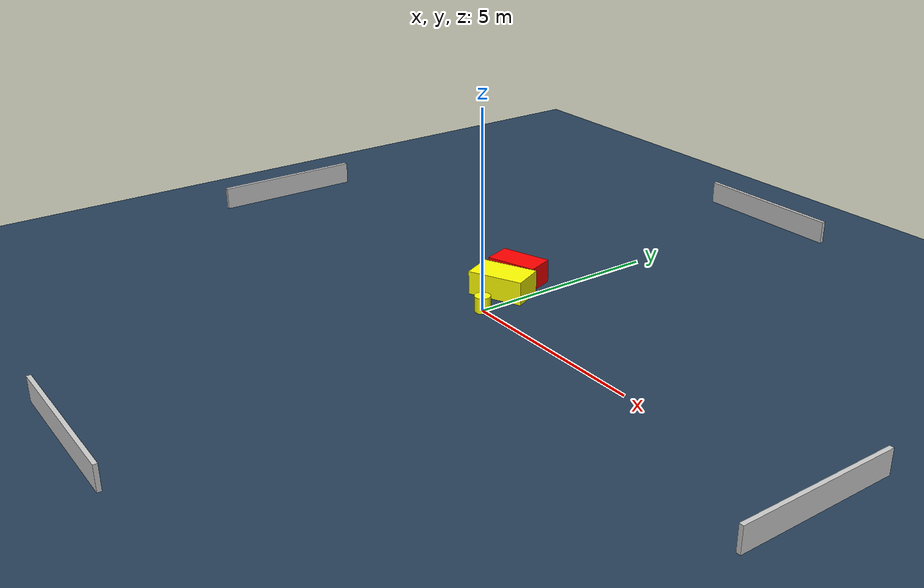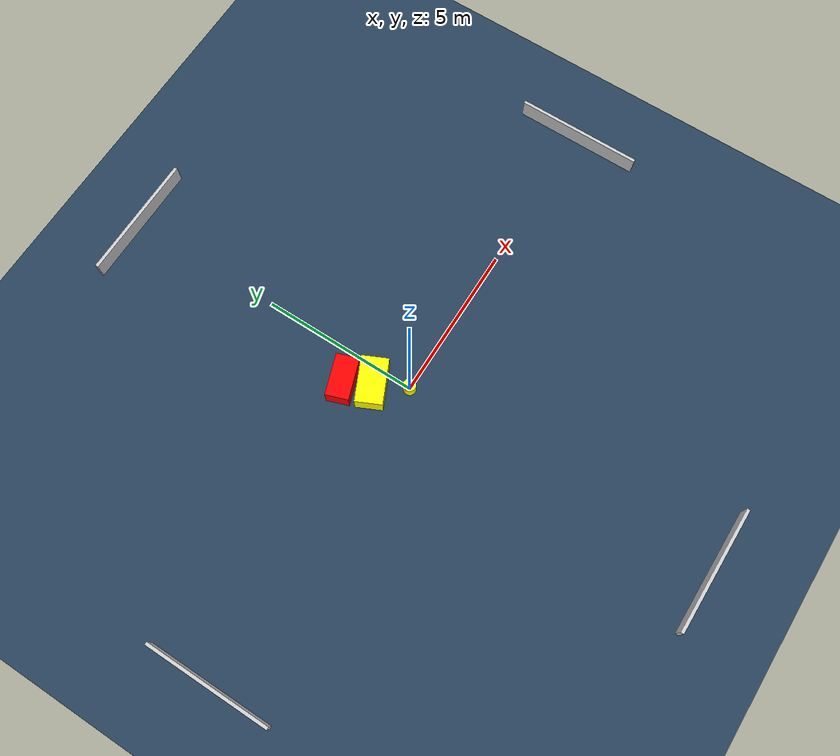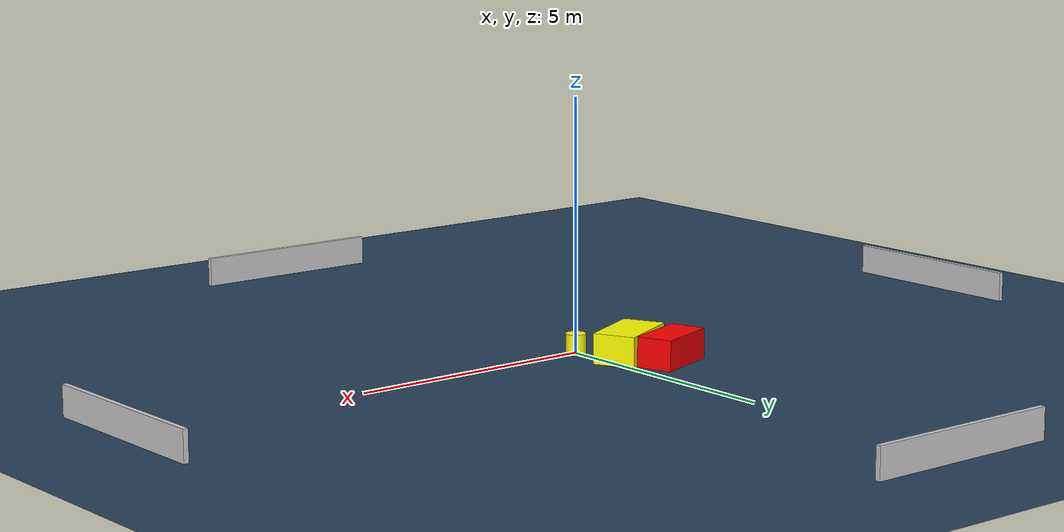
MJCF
<?xml version="1.0" ?>
<mujoco model="generated_environment">
  <option timestep="0.01" integrator="RK4" cone="elliptic"/>
  <default>
    <geom density="1"/>
  </default>
  <asset>
    <texture builtin="gradient" height="3072" name="skybox" rgb1="0.3 0.5 0.7" rgb2="0 0 0" type="skybox" width="512"/>
    <texture builtin="checker" height="300" name="groundplane" rgb1="0.2 0.3 0.4" rgb2="0.1 0.2 0.3" type="2d" width="300"/>
    <material name="groundplane" reflectance="0.2" texrepeat="5 5" texture="groundplane"/>
  </asset>
  <worldbody>
    <light dir="0 0 -1" directional="true" pos="0 0 1.5"/>
    <geom condim="3" friction="0.5 0.005 0.001" material="groundplane" name="floor" pos="0 0 0" size="0 0 0.05" type="plane"/>
    <body name="walls">
      <geom name="wall_1" condim="4" pos="-10.0 0.0 0.3" rgba="0.800000011920929 0.800000011920929 0.800000011920929 1.0" size="0.05 2.0 0.3" type="box"/>
      <geom name="wall_2" condim="4" pos="10.0 0.0 0.3" rgba="0.800000011920929 0.800000011920929 0.800000011920929 1.0" size="0.05 2.0 0.3" type="box"/>
      <geom name="wall_3" condim="4" pos="0.0 -10.0 0.3" rgba="0.800000011920929 0.800000011920929 0.800000011920929 1.0" size="2.0 0.05 0.3" type="box"/>
      <geom name="wall_4" condim="4" pos="0.0 10.0 0.3" rgba="0.800000011920929 0.800000011920929 0.800000011920929 1.0" size="2.0 0.05 0.3" type="box"/>
    </body>
    <body name="robot">
      <joint name="joint_x" type="slide" pos="0 0 0" axis="1 0 0"/>
      <joint name="joint_y" type="slide" pos="0 0 0" axis="0 1 0"/>
      <geom name="robot" type="cylinder" pos="0.0 0.0 0.2" size="0.2 0.2 0.0" mass="5.0" friction="1.0 0.005 0.0001" condim="4" rgba="1.0 1.0 0.0 1.0"/>
    </body>
    <body name="obstacle_1_movable">
      <geom name="obstacle_1_movable" condim="4" pos="-0.5132864933423353 0.9801726321220792 0.3" euler="0 0 205.07184445758148" friction="0.0 0.005 0.001" rgba="1.0 1.0 0.0 1.0" size="0.7208641186619111 0.42160449920249443 0.3" type="box" mass="0.1"/>
      <joint type="free"/>
    </body>
    <body name="obstacle_2_static">
      <geom name="obstacle_2_static" condim="4" pos="-0.8933755323015714 1.7665179223198593 0.3" euler="0 0 289.00523281968754" friction="0.0 0.005 0.001" rgba="1.0 0.0 0.0 1.0" size="0.359786528079137 0.6603395114664046 0.3" type="box"/>
    </body>
  </worldbody>
  <actuator>
    <motor name="actuator_x" joint="joint_x" gear="1" ctrlrange="-1 1"/>
    <motor name="actuator_y" joint="joint_y" gear="1" ctrlrange="-1 1"/>
  </actuator>
</mujoco>
